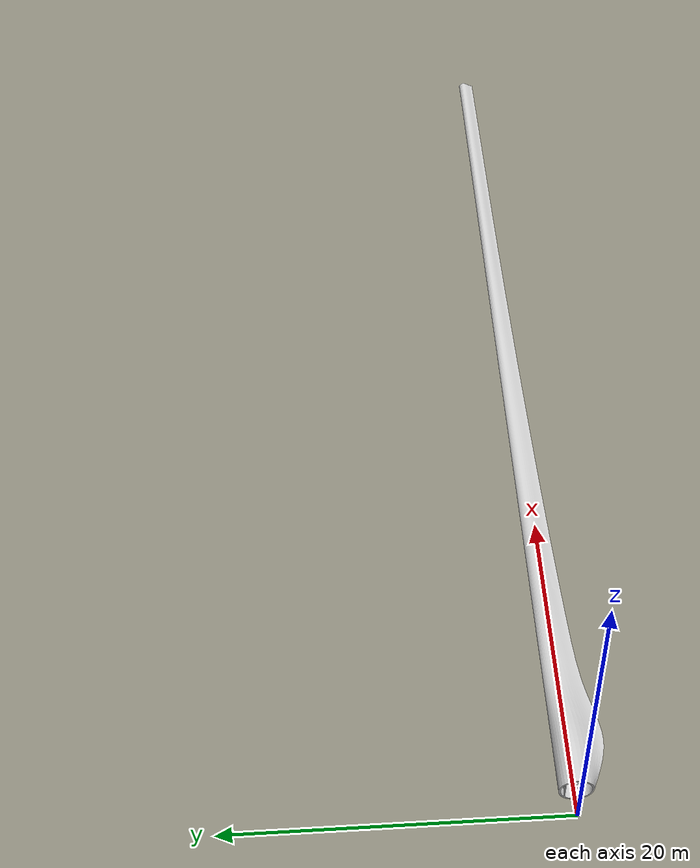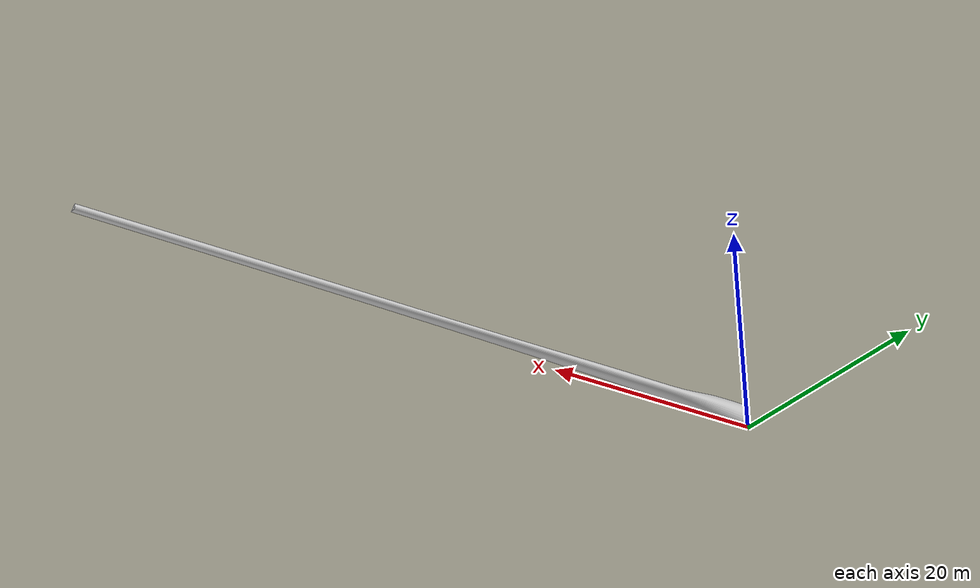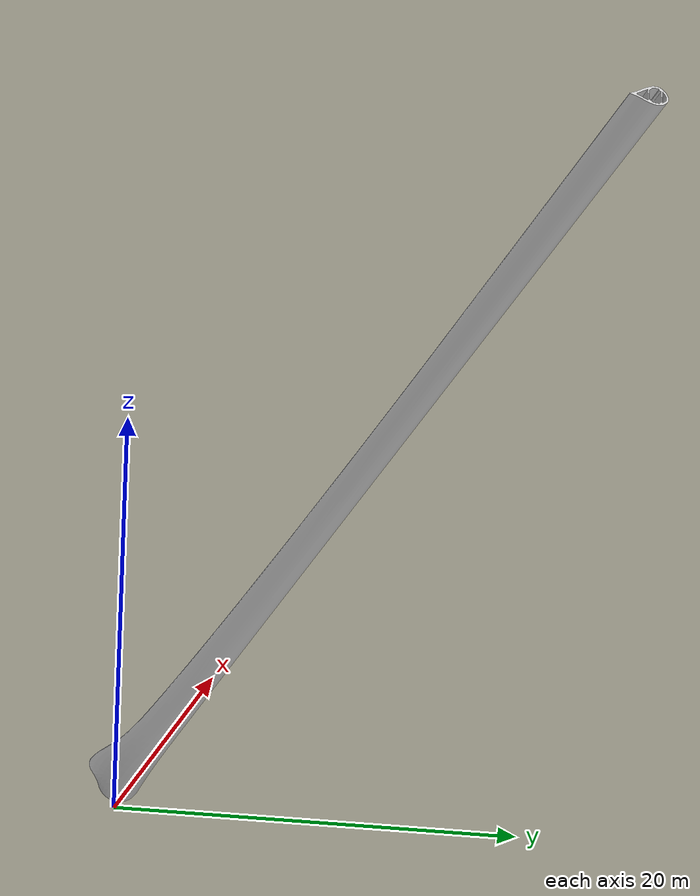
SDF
<?xml version='1.0'?>
<sdf version='1.5'>
  <model name="wind-turbine">
    <static>true</static>

    <link name="body">
      <pose>1 0 1 0 0 0</pose>
      <visual name="visual">
        <pose>0 0 0 0 0 0</pose>
        <geometry>
          <mesh>
            <uri>model://wind_turbine/mesh/wind_turbine_wing_30m.stl</uri>
            <scale>2 2 2</scale>
          </mesh>
        </geometry>
        <material>
          <ambient>0.3 0.3 0.3 1</ambient>
          <diffuse>0.8 0.8 0.8 1</diffuse>
          <specular>0.2 0.2 0.2 1</specular>
        </material>
      </visual>
      <collision name="collision">
        <pose>0 0 0 0 0 0</pose>
        <geometry>
          <mesh>
            <uri>model://wind_turbine/mesh/wind_turbine_wing_30m.stl</uri>
            <scale>2 2 2</scale>
          </mesh>
        </geometry>
      </collision>
    </link>
  </model>
</sdf>
